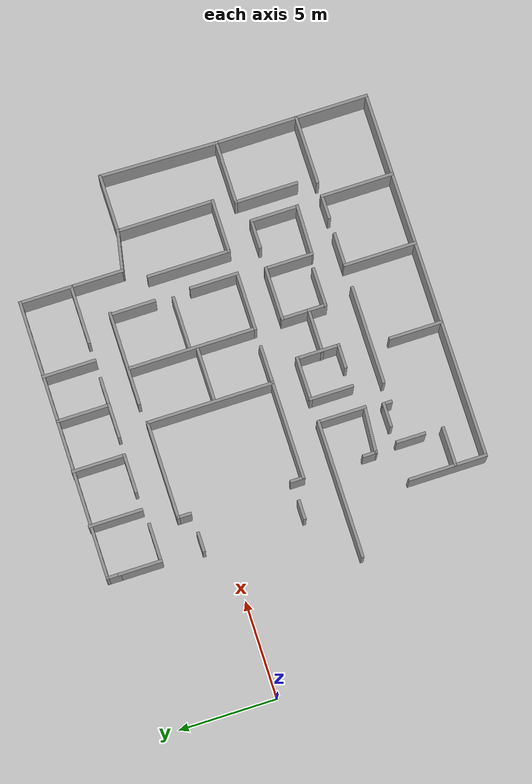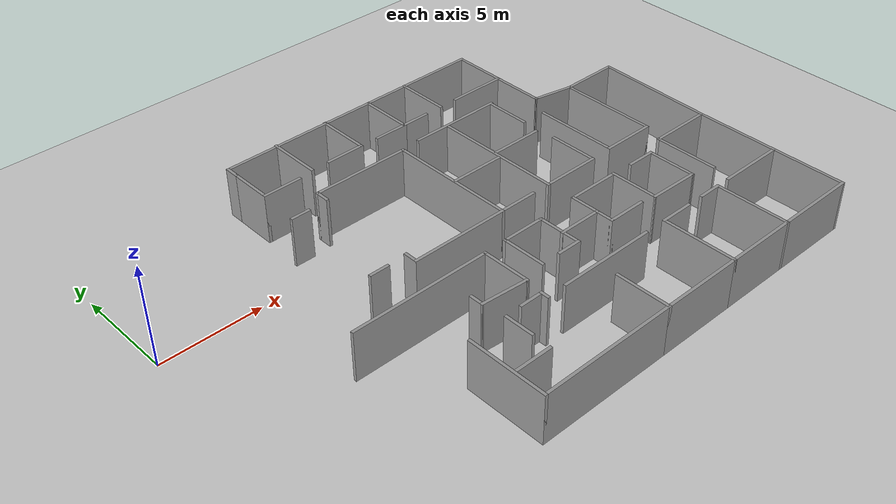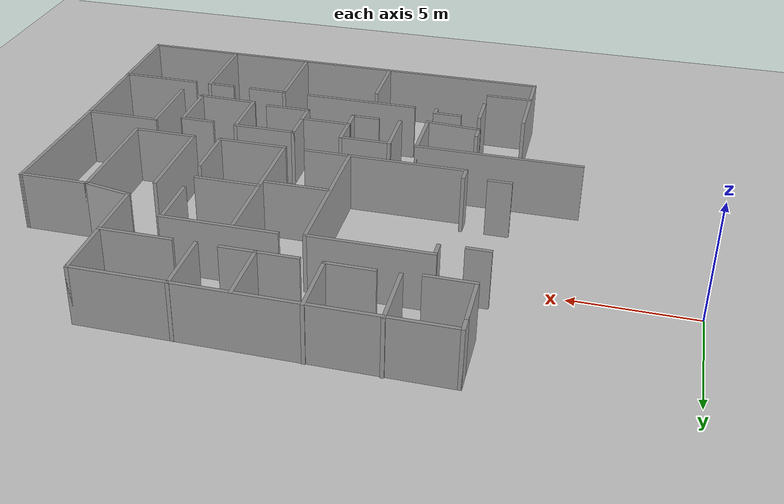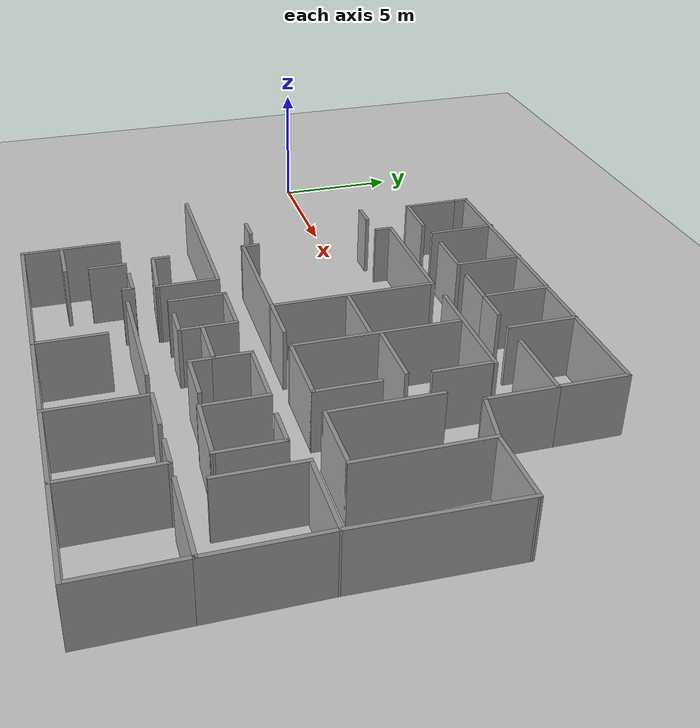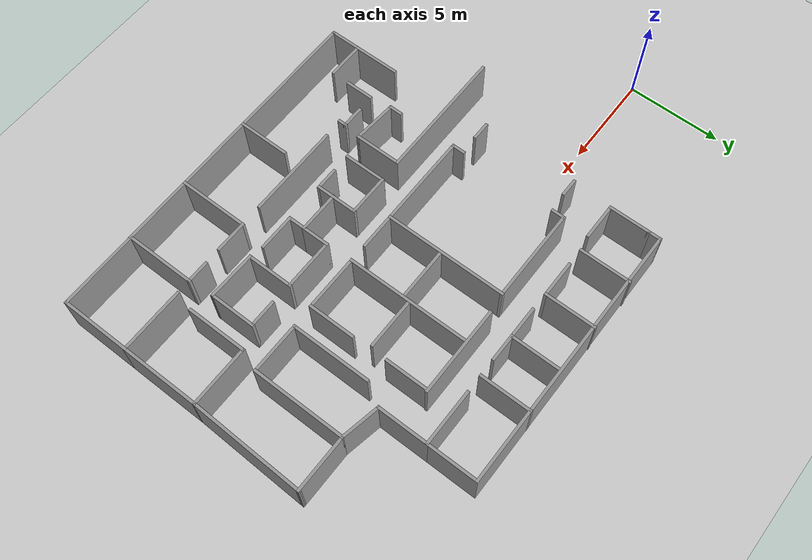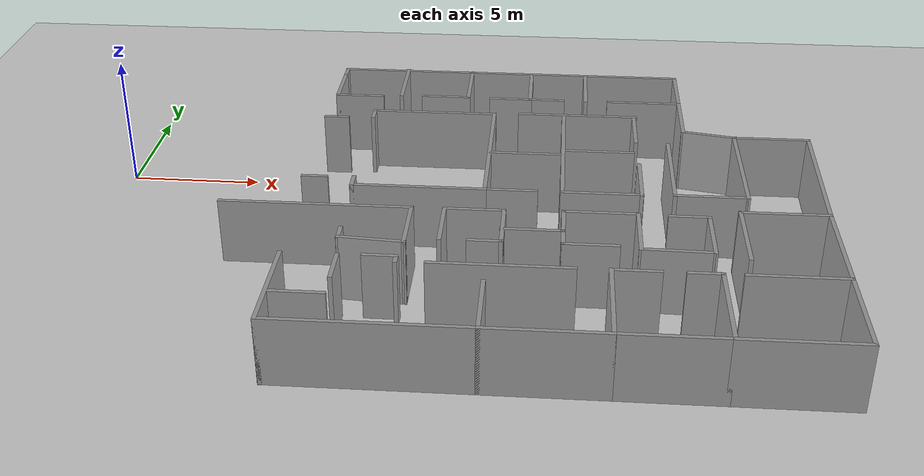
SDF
<sdf version="1.6">
 <world name="default">
  <model name="ground_plane">
   <static>1</static>
   <link name="link">
    <collision name="collision">
     <geometry><plane><normal>0 0 1</normal><size>100 100</size></plane></geometry>
     <surface>
      <contact><collide_bitmask>65535</collide_bitmask></contact>
      <friction><ode><mu>100</mu><mu2>50</mu2></ode></friction>
     </surface>
    </collision>
    <visual name="visual">
     <cast_shadows>0</cast_shadows>
     <geometry><plane><normal>0 0 1</normal><size>100 100</size></plane></geometry>
     <material>
      <script><uri>file://media/materials/scripts/gazebo.material</uri><name>Gazebo/Grey</name></script>
     </material>
    </visual>
   </link>
  </model>
  <model name="large_version">
   <pose>-3.01766 -0.701661 0 0 -0 0</pose>
   <link name="Wall_229">
    <collision name="Wall_229_Collision">
     <geometry><box><size>0.75 0.15 2.5</size></box></geometry>
     <pose>0 0 1.25 0 -0 0</pose>
    </collision>
    <visual name="Wall_229_Visual">
     <pose>0 0 1.25 0 -0 0</pose>
     <geometry><box><size>0.75 0.15 2.5</size></box></geometry>
     <material>
      <script><uri>file://media/materials/scripts/gazebo.material</uri><name>Gazebo/Grey</name></script>
      <ambient>1 1 1 1</ambient>
     </material>
     <meta><layer>0</layer></meta>
    </visual>
    <pose>10.8869 6.4501 0 0 -0 1.5708</pose>
   </link>
   <link name="Wall_230">
    <collision name="Wall_230_Collision">
     <geometry><box><size>14.25 0.15 2.5</size></box></geometry>
     <pose>0 0 1.25 0 -0 0</pose>
    </collision>
    <visual name="Wall_230_Visual">
     <pose>0 0 1.25 0 -0 0</pose>
     <geometry><box><size>14.25 0.15 2.5</size></box></geometry>
     <material>
      <script><uri>file://media/materials/scripts/gazebo.material</uri><name>Gazebo/Grey</name></script>
      <ambient>1 1 1 1</ambient>
     </material>
     <meta><layer>0</layer></meta>
    </visual>
    <pose>17.9369 6.7501 0 0 -0 0</pose>
   </link>
   <link name="Wall_231">
    <collision name="Wall_231_Collision">
     <geometry><box><size>2.75 0.15 2.5</size></box></geometry>
     <pose>0 0 1.25 0 -0 0</pose>
    </collision>
    <visual name="Wall_231_Visual">
     <pose>0 0 1.25 0 -0 0</pose>
     <geometry><box><size>2.75 0.15 2.5</size></box></geometry>
     <material>
      <script><uri>file://media/materials/scripts/gazebo.material</uri><name>Gazebo/Grey</name></script>
      <ambient>1 1 1 1</ambient>
     </material>
     <meta><layer>0</layer></meta>
    </visual>
    <pose>24.9869 5.4501 0 0 -0 -1.5708</pose>
   </link>
   <link name="Wall_232">
    <collision name="Wall_232_Collision">
     <geometry><box><size>3 0.15 2.5</size></box></geometry>
     <pose>0 0 1.25 0 -0 0</pose>
    </collision>
    <visual name="Wall_232_Visual">
     <pose>0 0 1.25 0 -0 0</pose>
     <geometry><box><size>3 0.15 2.5</size></box></geometry>
     <material>
      <script><uri>file://media/materials/scripts/gazebo.material</uri><name>Gazebo/Grey</name></script>
      <ambient>1 1 1 1</ambient>
     </material>
     <meta><layer>0</layer></meta>
    </visual>
    <pose>23.5619 4.1501 0 0 -0 3.14159</pose>
   </link>
   <link name="Wall_234">
    <collision name="Wall_234_Collision">
     <geometry><box><size>2.75 0.15 2.5</size></box></geometry>
     <pose>0 0 1.25 0 -0 0</pose>
    </collision>
    <visual name="Wall_234_Visual">
     <pose>0 0 1.25 0 -0 0</pose>
     <geometry><box><size>2.75 0.15 2.5</size></box></geometry>
     <material>
      <script><uri>file://media/materials/scripts/gazebo.material</uri><name>Gazebo/Grey</name></script>
      <ambient>1 1 1 1</ambient>
     </material>
     <meta><layer>0</layer></meta>
    </visual>
    <pose>21.182 5.45872 0 0 -0 -1.5708</pose>
   </link>
   <link name="Wall_236">
    <collision name="Wall_236_Collision">
     <geometry><box><size>2.75 0.15 2.5</size></box></geometry>
     <pose>0 0 1.25 0 -0 0</pose>
    </collision>
    <visual name="Wall_236_Visual">
     <pose>0 0 1.25 0 -0 0</pose>
     <geometry><box><size>2.75 0.15 2.5</size></box></geometry>
     <material>
      <script><uri>file://media/materials/scripts/gazebo.material</uri><name>Gazebo/Grey</name></script>
      <ambient>1 1 1 1</ambient>
     </material>
     <meta><layer>0</layer></meta>
    </visual>
    <pose>18.8863 5.44713 0 0 -0 -1.5708</pose>
   </link>
   <link name="Wall_238">
    <collision name="Wall_238_Collision">
     <geometry><box><size>2.75 0.15 2.5</size></box></geometry>
     <pose>0 0 1.25 0 -0 0</pose>
    </collision>
    <visual name="Wall_238_Visual">
     <pose>0 0 1.25 0 -0 0</pose>
     <geometry><box><size>2.75 0.15 2.5</size></box></geometry>
     <material>
      <script><uri>file://media/materials/scripts/gazebo.material</uri><name>Gazebo/Grey</name></script>
      <ambient>1 1 1 1</ambient>
     </material>
     <meta><layer>0</layer></meta>
    </visual>
    <pose>16.324 5.48191 0 0 -0 -1.5708</pose>
   </link>
   <link name="Wall_240">
    <collision name="Wall_240_Collision">
     <geometry><box><size>2.75 0.15 2.5</size></box></geometry>
     <pose>0 0 1.25 0 -0 0</pose>
    </collision>
    <visual name="Wall_240_Visual">
     <pose>0 0 1.25 0 -0 0</pose>
     <geometry><box><size>2.75 0.15 2.5</size></box></geometry>
     <material>
      <script><uri>file://media/materials/scripts/gazebo.material</uri><name>Gazebo/Grey</name></script>
      <ambient>1 1 1 1</ambient>
     </material>
     <meta><layer>0</layer></meta>
    </visual>
    <pose>13.5414 5.5051 0 0 -0 -1.5708</pose>
   </link>
   <link name="Wall_242">
    <collision name="Wall_242_Collision">
     <geometry><box><size>2.25 0.15 2.5</size></box></geometry>
     <pose>0 0 1.25 0 -0 0</pose>
    </collision>
    <visual name="Wall_242_Visual">
     <pose>0 0 1.25 0 -0 0</pose>
     <geometry><box><size>2.25 0.15 2.5</size></box></geometry>
     <material>
      <script><uri>file://media/materials/scripts/gazebo.material</uri><name>Gazebo/Grey</name></script>
      <ambient>1 1 1 1</ambient>
     </material>
     <meta><layer>0</layer></meta>
    </visual>
    <pose>10.8869 5.1001 0 0 -0 -1.5708</pose>
   </link>
   <link name="Wall_243">
    <collision name="Wall_243_Collision">
     <geometry><box><size>2 0.15 2.5</size></box></geometry>
     <pose>0 0 1.25 0 -0 0</pose>
    </collision>
    <visual name="Wall_243_Visual">
     <pose>0 0 1.25 0 -0 0</pose>
     <geometry><box><size>2 0.15 2.5</size></box></geometry>
     <material>
      <script><uri>file://media/materials/scripts/gazebo.material</uri><name>Gazebo/Grey</name></script>
      <ambient>1 1 1 1</ambient>
     </material>
     <meta><layer>0</layer></meta>
    </visual>
    <pose>11.8119 4.0501 0 0 -0 0</pose>
   </link>
   <link name="Wall_245">
    <collision name="Wall_245_Collision">
     <geometry><box><size>2 0.15 2.5</size></box></geometry>
     <pose>0 0 1.25 0 -0 0</pose>
    </collision>
    <visual name="Wall_245_Visual">
     <pose>0 0 1.25 0 -0 0</pose>
     <geometry><box><size>2 0.15 2.5</size></box></geometry>
     <material>
      <script><uri>file://media/materials/scripts/gazebo.material</uri><name>Gazebo/Grey</name></script>
      <ambient>1 1 1 1</ambient>
     </material>
     <meta><layer>0</layer></meta>
    </visual>
    <pose>15.399 4.18191 0 0 -0 3.14159</pose>
   </link>
   <link name="Wall_247">
    <collision name="Wall_247_Collision">
     <geometry><box><size>1.75 0.15 2.5</size></box></geometry>
     <pose>0 0 1.25 0 -0 0</pose>
    </collision>
    <visual name="Wall_247_Visual">
     <pose>0 0 1.25 0 -0 0</pose>
     <geometry><box><size>1.75 0.15 2.5</size></box></geometry>
     <material>
      <script><uri>file://media/materials/scripts/gazebo.material</uri><name>Gazebo/Grey</name></script>
      <ambient>1 1 1 1</ambient>
     </material>
     <meta><layer>0</layer></meta>
    </visual>
    <pose>18.0863 4.14713 0 0 -0 3.14159</pose>
   </link>
   <link name="Wall_249">
    <collision name="Wall_249_Collision">
     <geometry><box><size>1.5 0.15 2.5</size></box></geometry>
     <pose>0 0 1.25 0 -0 0</pose>
    </collision>
    <visual name="Wall_249_Visual">
     <pose>0 0 1.25 0 -0 0</pose>
     <geometry><box><size>1.5 0.15 2.5</size></box></geometry>
     <material>
      <script><uri>file://media/materials/scripts/gazebo.material</uri><name>Gazebo/Grey</name></script>
      <ambient>1 1 1 1</ambient>
     </material>
     <meta><layer>0</layer></meta>
    </visual>
    <pose>19.5613 4.14713 0 0 -0 0</pose>
   </link>
   <link name="Wall_261">
    <collision name="Wall_261_Collision">
     <geometry><box><size>1 0.15 2.5</size></box></geometry>
     <pose>0 0 1.25 0 -0 0</pose>
    </collision>
    <visual name="Wall_261_Visual">
     <pose>0 0 1.25 0 -0 0</pose>
     <geometry><box><size>1 0.15 2.5</size></box></geometry>
     <material>
      <script><uri>file://media/materials/scripts/gazebo.material</uri><name>Gazebo/Grey</name></script>
      <ambient>1 1 1 1</ambient>
     </material>
     <meta><layer>0</layer></meta>
    </visual>
    <pose>11.183 1.93251 0 0 -0 0</pose>
   </link>
   <link name="Wall_263">
    <collision name="Wall_263_Collision">
     <geometry><box><size>1 0.15 2.5</size></box></geometry>
     <pose>0 0 1.25 0 -0 0</pose>
    </collision>
    <visual name="Wall_263_Visual">
     <pose>0 0 1.25 0 -0 0</pose>
     <geometry><box><size>1 0.15 2.5</size></box></geometry>
     <material>
      <script><uri>file://media/materials/scripts/gazebo.material</uri><name>Gazebo/Grey</name></script>
      <ambient>1 1 1 1</ambient>
     </material>
     <meta><layer>0</layer></meta>
    </visual>
    <pose>11.183 -3.16749 0 0 -0 0</pose>
   </link>
   <link name="Wall_265">
    <collision name="Wall_265_Collision">
     <geometry><box><size>0.75 0.15 2.5</size></box></geometry>
     <pose>0 0 1.25 0 -0 0</pose>
    </collision>
    <visual name="Wall_265_Visual">
     <pose>0 0 1.25 0 -0 0</pose>
     <geometry><box><size>0.75 0.15 2.5</size></box></geometry>
     <material>
      <script><uri>file://media/materials/scripts/gazebo.material</uri><name>Gazebo/Grey</name></script>
      <ambient>1 1 1 1</ambient>
     </material>
     <meta><layer>0</layer></meta>
    </visual>
    <pose>12.644 -3.42149 0 0 -0 -1.5708</pose>
   </link>
   <link name="Wall_267">
    <collision name="Wall_267_Collision">
     <geometry><box><size>5 0.15 2.5</size></box></geometry>
     <pose>0 0 1.25 0 -0 0</pose>
    </collision>
    <visual name="Wall_267_Visual">
     <pose>0 0 1.25 0 -0 0</pose>
     <geometry><box><size>5 0.15 2.5</size></box></geometry>
     <material>
      <script><uri>file://media/materials/scripts/gazebo.material</uri><name>Gazebo/Grey</name></script>
      <ambient>1 1 1 1</ambient>
     </material>
     <meta><layer>0</layer></meta>
    </visual>
    <pose>15.069 -3.72149 0 0 -0 0</pose>
   </link>
   <link name="Wall_268">
    <collision name="Wall_268_Collision">
     <geometry><box><size>6.5 0.15 2.5</size></box></geometry>
     <pose>0 0 1.25 0 -0 0</pose>
    </collision>
    <visual name="Wall_268_Visual">
     <pose>0 0 1.25 0 -0 0</pose>
     <geometry><box><size>6.5 0.15 2.5</size></box></geometry>
     <material>
      <script><uri>file://media/materials/scripts/gazebo.material</uri><name>Gazebo/Grey</name></script>
      <ambient>1 1 1 1</ambient>
     </material>
     <meta><layer>0</layer></meta>
    </visual>
    <pose>17.494 -0.546491 0 0 -0 1.5708</pose>
   </link>
   <link name="Wall_269">
    <collision name="Wall_269_Collision">
     <geometry><box><size>5 0.15 2.5</size></box></geometry>
     <pose>0 0 1.25 0 -0 0</pose>
    </collision>
    <visual name="Wall_269_Visual">
     <pose>0 0 1.25 0 -0 0</pose>
     <geometry><box><size>5 0.15 2.5</size></box></geometry>
     <material>
      <script><uri>file://media/materials/scripts/gazebo.material</uri><name>Gazebo/Grey</name></script>
      <ambient>1 1 1 1</ambient>
     </material>
     <meta><layer>0</layer></meta>
    </visual>
    <pose>15.069 2.62851 0 0 -0 3.14159</pose>
   </link>
   <link name="Wall_270">
    <collision name="Wall_270_Collision">
     <geometry><box><size>0.75 0.15 2.5</size></box></geometry>
     <pose>0 0 1.25 0 -0 0</pose>
    </collision>
    <visual name="Wall_270_Visual">
     <pose>0 0 1.25 0 -0 0</pose>
     <geometry><box><size>0.75 0.15 2.5</size></box></geometry>
     <material>
      <script><uri>file://media/materials/scripts/gazebo.material</uri><name>Gazebo/Grey</name></script>
      <ambient>1 1 1 1</ambient>
     </material>
     <meta><layer>0</layer></meta>
    </visual>
    <pose>12.644 2.32851 0 0 -0 -1.5708</pose>
   </link>
   <link name="Wall_282">
    <collision name="Wall_282_Collision">
     <geometry><box><size>7 0.15 2.5</size></box></geometry>
     <pose>0 0 1.25 0 -0 0</pose>
    </collision>
    <visual name="Wall_282_Visual">
     <pose>0 0 1.25 0 -0 0</pose>
     <geometry><box><size>7 0.15 2.5</size></box></geometry>
     <material>
      <script><uri>file://media/materials/scripts/gazebo.material</uri><name>Gazebo/Grey</name></script>
      <ambient>1 1 1 1</ambient>
     </material>
     <meta><layer>0</layer></meta>
    </visual>
    <pose>11.5771 -5.25493 0 0 -0 0</pose>
   </link>
   <link name="Wall_283">
    <collision name="Wall_283_Collision">
     <geometry><box><size>2.5 0.15 2.5</size></box></geometry>
     <pose>0 0 1.25 0 -0 0</pose>
    </collision>
    <visual name="Wall_283_Visual">
     <pose>0 0 1.25 0 -0 0</pose>
     <geometry><box><size>2.5 0.15 2.5</size></box></geometry>
     <material>
      <script><uri>file://media/materials/scripts/gazebo.material</uri><name>Gazebo/Grey</name></script>
      <ambient>1 1 1 1</ambient>
     </material>
     <meta><layer>0</layer></meta>
    </visual>
    <pose>15.0021 -6.42993 0 0 -0 -1.5708</pose>
   </link>
   <link name="Wall_285">
    <collision name="Wall_285_Collision">
     <geometry><box><size>0.75 0.15 2.5</size></box></geometry>
     <pose>0 0 1.25 0 -0 0</pose>
    </collision>
    <visual name="Wall_285_Visual">
     <pose>0 0 1.25 0 -0 0</pose>
     <geometry><box><size>0.75 0.15 2.5</size></box></geometry>
     <material>
      <script><uri>file://media/materials/scripts/gazebo.material</uri><name>Gazebo/Grey</name></script>
      <ambient>1 1 1 1</ambient>
     </material>
     <meta><layer>0</layer></meta>
    </visual>
    <pose>12.7434 -7.13174 0 0 -0 -1.5708</pose>
   </link>
   <link name="Wall_286">
    <collision name="Wall_286_Collision">
     <geometry><box><size>2.41533 0.15 2.5</size></box></geometry>
     <pose>0 0 1.25 0 -0 0</pose>
    </collision>
    <visual name="Wall_286_Visual">
     <pose>0 0 1.25 0 -0 0</pose>
     <geometry><box><size>2.41533 0.15 2.5</size></box></geometry>
     <material>
      <script><uri>file://media/materials/scripts/gazebo.material</uri><name>Gazebo/Grey</name></script>
      <ambient>1 1 1 1</ambient>
     </material>
     <meta><layer>0</layer></meta>
    </visual>
    <pose>13.8727 -7.51834 0 0 -0 -0.076527</pose>
   </link>
   <link name="Wall_290">
    <collision name="Wall_290_Collision">
     <geometry><box><size>4 0.15 2.5</size></box></geometry>
     <pose>0 0 1.25 0 -0 0</pose>
    </collision>
    <visual name="Wall_290_Visual">
     <pose>0 0 1.25 0 -0 0</pose>
     <geometry><box><size>4 0.15 2.5</size></box></geometry>
     <material>
      <script><uri>file://media/materials/scripts/gazebo.material</uri><name>Gazebo/Grey</name></script>
      <ambient>1 1 1 1</ambient>
     </material>
     <meta><layer>0</layer></meta>
    </visual>
    <pose>10.9817 -10.5217 0 0 -0 -1.5708</pose>
   </link>
   <link name="Wall_291">
    <collision name="Wall_291_Collision">
     <geometry><box><size>7 0.15 2.5</size></box></geometry>
     <pose>0 0 1.25 0 -0 0</pose>
    </collision>
    <visual name="Wall_291_Visual">
     <pose>0 0 1.25 0 -0 0</pose>
     <geometry><box><size>7 0.15 2.5</size></box></geometry>
     <material>
      <script><uri>file://media/materials/scripts/gazebo.material</uri><name>Gazebo/Grey</name></script>
      <ambient>1 1 1 1</ambient>
     </material>
     <meta><layer>0</layer></meta>
    </visual>
    <pose>14.4067 -12.4467 0 0 -0 0</pose>
   </link>
   <link name="Wall_292">
    <collision name="Wall_292_Collision">
     <geometry><box><size>2.75 0.15 2.5</size></box></geometry>
     <pose>0 0 1.25 0 -0 0</pose>
    </collision>
    <visual name="Wall_292_Visual">
     <pose>0 0 1.25 0 -0 0</pose>
     <geometry><box><size>2.75 0.15 2.5</size></box></geometry>
     <material>
      <script><uri>file://media/materials/scripts/gazebo.material</uri><name>Gazebo/Grey</name></script>
      <ambient>1 1 1 1</ambient>
     </material>
     <meta><layer>0</layer></meta>
    </visual>
    <pose>17.8317 -11.1467 0 0 -0 1.5708</pose>
   </link>
   <link name="Wall_294">
    <collision name="Wall_294_Collision">
     <geometry><box><size>2 0.15 2.5</size></box></geometry>
     <pose>0 0 1.25 0 -0 0</pose>
    </collision>
    <visual name="Wall_294_Visual">
     <pose>0 0 1.25 0 -0 0</pose>
     <geometry><box><size>2 0.15 2.5</size></box></geometry>
     <material>
      <script><uri>file://media/materials/scripts/gazebo.material</uri><name>Gazebo/Grey</name></script>
      <ambient>1 1 1 1</ambient>
     </material>
     <meta><layer>0</layer></meta>
    </visual>
    <pose>11.9333 -10.9034 0 0 -0 0</pose>
   </link>
   <link name="Wall_296">
    <collision name="Wall_296_Collision">
     <geometry><box><size>1.5 0.15 2.5</size></box></geometry>
     <pose>0 0 1.25 0 -0 0</pose>
    </collision>
    <visual name="Wall_296_Visual">
     <pose>0 0 1.25 0 -0 0</pose>
     <geometry><box><size>1.5 0.15 2.5</size></box></geometry>
     <material>
      <script><uri>file://media/materials/scripts/gazebo.material</uri><name>Gazebo/Grey</name></script>
      <ambient>1 1 1 1</ambient>
     </material>
     <meta><layer>0</layer></meta>
    </visual>
    <pose>12.9012 -9.26201 0 0 -0 -1.5708</pose>
   </link>
   <link name="Wall_298">
    <collision name="Wall_298_Collision">
     <geometry><box><size>1.25 0.15 2.5</size></box></geometry>
     <pose>0 0 1.25 0 -0 0</pose>
    </collision>
    <visual name="Wall_298_Visual">
     <pose>0 0 1.25 0 -0 0</pose>
     <geometry><box><size>1.25 0.15 2.5</size></box></geometry>
     <material>
      <script><uri>file://media/materials/scripts/gazebo.material</uri><name>Gazebo/Grey</name></script>
      <ambient>1 1 1 1</ambient>
     </material>
     <meta><layer>0</layer></meta>
    </visual>
    <pose>14.3183 -8.53006 0 0 -0 0</pose>
   </link>
   <link name="Wall_300">
    <collision name="Wall_300_Collision">
     <geometry><box><size>0.5 0.15 2.5</size></box></geometry>
     <pose>0 0 1.25 0 -0 0</pose>
    </collision>
    <visual name="Wall_300_Visual">
     <pose>0 0 1.25 0 -0 0</pose>
     <geometry><box><size>0.5 0.15 2.5</size></box></geometry>
     <material>
      <script><uri>file://media/materials/scripts/gazebo.material</uri><name>Gazebo/Grey</name></script>
      <ambient>1 1 1 1</ambient>
     </material>
     <meta><layer>0</layer></meta>
    </visual>
    <pose>14.8683 -8.70506 0 0 -0 -1.5708</pose>
   </link>
   <link name="Wall_302">
    <collision name="Wall_302_Collision">
     <geometry><box><size>5 0.15 2.5</size></box></geometry>
     <pose>0 0 1.25 0 -0 0</pose>
    </collision>
    <visual name="Wall_302_Visual">
     <pose>0 0 1.25 0 -0 0</pose>
     <geometry><box><size>5 0.15 2.5</size></box></geometry>
     <material>
      <script><uri>file://media/materials/scripts/gazebo.material</uri><name>Gazebo/Grey</name></script>
      <ambient>1 1 1 1</ambient>
     </material>
     <meta><layer>0</layer></meta>
    </visual>
    <pose>18.3267 -8.85006 0 0 -0 0</pose>
   </link>
   <link name="Wall_304">
    <collision name="Wall_304_Collision">
     <geometry><box><size>4.25 0.15 2.5</size></box></geometry>
     <pose>0 0 1.25 0 -0 0</pose>
    </collision>
    <visual name="Wall_304_Visual">
     <pose>0 0 1.25 0 -0 0</pose>
     <geometry><box><size>4.25 0.15 2.5</size></box></geometry>
     <material>
      <script><uri>file://media/materials/scripts/gazebo.material</uri><name>Gazebo/Grey</name></script>
      <ambient>1 1 1 1</ambient>
     </material>
     <meta><layer>0</layer></meta>
    </visual>
    <pose>19.8817 -12.4467 0 0 -0 0</pose>
   </link>
   <link name="Wall_305">
    <collision name="Wall_305_Collision">
     <geometry><box><size>3.75 0.15 2.5</size></box></geometry>
     <pose>0 0 1.25 0 -0 0</pose>
    </collision>
    <visual name="Wall_305_Visual">
     <pose>0 0 1.25 0 -0 0</pose>
     <geometry><box><size>3.75 0.15 2.5</size></box></geometry>
     <material>
      <script><uri>file://media/materials/scripts/gazebo.material</uri><name>Gazebo/Grey</name></script>
      <ambient>1 1 1 1</ambient>
     </material>
     <meta><layer>0</layer></meta>
    </visual>
    <pose>21.9317 -10.6467 0 0 -0 1.5708</pose>
   </link>
   <link name="Wall_306">
    <collision name="Wall_306_Collision">
     <geometry><box><size>1.75 0.15 2.5</size></box></geometry>
     <pose>0 0 1.25 0 -0 0</pose>
    </collision>
    <visual name="Wall_306_Visual">
     <pose>0 0 1.25 0 -0 0</pose>
     <geometry><box><size>1.75 0.15 2.5</size></box></geometry>
     <material>
      <script><uri>file://media/materials/scripts/gazebo.material</uri><name>Gazebo/Grey</name></script>
      <ambient>1 1 1 1</ambient>
     </material>
     <meta><layer>0</layer></meta>
    </visual>
    <pose>22.7317 -8.84673 0 0 -0 0</pose>
   </link>
   <link name="Wall_308">
    <collision name="Wall_308_Collision">
     <geometry><box><size>3.75 0.15 2.5</size></box></geometry>
     <pose>0 0 1.25 0 -0 0</pose>
    </collision>
    <visual name="Wall_308_Visual">
     <pose>0 0 1.25 0 -0 0</pose>
     <geometry><box><size>3.75 0.15 2.5</size></box></geometry>
     <material>
      <script><uri>file://media/materials/scripts/gazebo.material</uri><name>Gazebo/Grey</name></script>
      <ambient>1 1 1 1</ambient>
     </material>
     <meta><layer>0</layer></meta>
    </visual>
    <pose>23.7317 -12.4467 0 0 -0 0</pose>
   </link>
   <link name="Wall_309">
    <collision name="Wall_309_Collision">
     <geometry><box><size>3.75 0.15 2.5</size></box></geometry>
     <pose>0 0 1.25 0 -0 0</pose>
    </collision>
    <visual name="Wall_309_Visual">
     <pose>0 0 1.25 0 -0 0</pose>
     <geometry><box><size>3.75 0.15 2.5</size></box></geometry>
     <material>
      <script><uri>file://media/materials/scripts/gazebo.material</uri><name>Gazebo/Grey</name></script>
      <ambient>1 1 1 1</ambient>
     </material>
     <meta><layer>0</layer></meta>
    </visual>
    <pose>25.5317 -10.6467 0 0 -0 1.5708</pose>
   </link>
   <link name="Wall_310">
    <collision name="Wall_310_Collision">
     <geometry><box><size>1.25 0.15 2.5</size></box></geometry>
     <pose>0 0 1.25 0 -0 0</pose>
    </collision>
    <visual name="Wall_310_Visual">
     <pose>0 0 1.25 0 -0 0</pose>
     <geometry><box><size>1.25 0.15 2.5</size></box></geometry>
     <material>
      <script><uri>file://media/materials/scripts/gazebo.material</uri><name>Gazebo/Grey</name></script>
      <ambient>1 1 1 1</ambient>
     </material>
     <meta><layer>0</layer></meta>
    </visual>
    <pose>24.9817 -8.84673 0 0 -0 3.14159</pose>
   </link>
   <link name="Wall_312">
    <collision name="Wall_312_Collision">
     <geometry><box><size>4.25 0.15 2.5</size></box></geometry>
     <pose>0 0 1.25 0 -0 0</pose>
    </collision>
    <visual name="Wall_312_Visual">
     <pose>0 0 1.25 0 -0 0</pose>
     <geometry><box><size>4.25 0.15 2.5</size></box></geometry>
     <material>
      <script><uri>file://media/materials/scripts/gazebo.material</uri><name>Gazebo/Grey</name></script>
      <ambient>1 1 1 1</ambient>
     </material>
     <meta><layer>0</layer></meta>
    </visual>
    <pose>27.5817 -12.4467 0 0 -0 0</pose>
   </link>
   <link name="Wall_313">
    <collision name="Wall_313_Collision">
     <geometry><box><size>3.75 0.15 2.5</size></box></geometry>
     <pose>0 0 1.25 0 -0 0</pose>
    </collision>
    <visual name="Wall_313_Visual">
     <pose>0 0 1.25 0 -0 0</pose>
     <geometry><box><size>3.75 0.15 2.5</size></box></geometry>
     <material>
      <script><uri>file://media/materials/scripts/gazebo.material</uri><name>Gazebo/Grey</name></script>
      <ambient>1 1 1 1</ambient>
     </material>
     <meta><layer>0</layer></meta>
    </visual>
    <pose>29.6317 -10.6467 0 0 -0 1.5708</pose>
   </link>
   <link name="Wall_314">
    <collision name="Wall_314_Collision">
     <geometry><box><size>3.5 0.15 2.5</size></box></geometry>
     <pose>0 0 1.25 0 -0 0</pose>
    </collision>
    <visual name="Wall_314_Visual">
     <pose>0 0 1.25 0 -0 0</pose>
     <geometry><box><size>3.5 0.15 2.5</size></box></geometry>
     <material>
      <script><uri>file://media/materials/scripts/gazebo.material</uri><name>Gazebo/Grey</name></script>
      <ambient>1 1 1 1</ambient>
     </material>
     <meta><layer>0</layer></meta>
    </visual>
    <pose>27.9567 -8.84673 0 0 -0 3.14159</pose>
   </link>
   <link name="Wall_316">
    <collision name="Wall_316_Collision">
     <geometry><box><size>4.25 0.15 2.5</size></box></geometry>
     <pose>0 0 1.25 0 -0 0</pose>
    </collision>
    <visual name="Wall_316_Visual">
     <pose>0 0 1.25 0 -0 0</pose>
     <geometry><box><size>4.25 0.15 2.5</size></box></geometry>
     <material>
      <script><uri>file://media/materials/scripts/gazebo.material</uri><name>Gazebo/Grey</name></script>
      <ambient>1 1 1 1</ambient>
     </material>
     <meta><layer>0</layer></meta>
    </visual>
    <pose>29.6317 -6.79673 0 0 -0 1.5708</pose>
   </link>
   <link name="Wall_317">
    <collision name="Wall_317_Collision">
     <geometry><box><size>3.25 0.15 2.5</size></box></geometry>
     <pose>0 0 1.25 0 -0 0</pose>
    </collision>
    <visual name="Wall_317_Visual">
     <pose>0 0 1.25 0 -0 0</pose>
     <geometry><box><size>3.25 0.15 2.5</size></box></geometry>
     <material>
      <script><uri>file://media/materials/scripts/gazebo.material</uri><name>Gazebo/Grey</name></script>
      <ambient>1 1 1 1</ambient>
     </material>
     <meta><layer>0</layer></meta>
    </visual>
    <pose>28.0817 -4.74673 0 0 -0 3.14159</pose>
   </link>
   <link name="Wall_318">
    <collision name="Wall_318_Collision">
     <geometry><box><size>3.25 0.15 2.5</size></box></geometry>
     <pose>0 0 1.25 0 -0 0</pose>
    </collision>
    <visual name="Wall_318_Visual">
     <pose>0 0 1.25 0 -0 0</pose>
     <geometry><box><size>3.25 0.15 2.5</size></box></geometry>
     <material>
      <script><uri>file://media/materials/scripts/gazebo.material</uri><name>Gazebo/Grey</name></script>
      <ambient>1 1 1 1</ambient>
     </material>
     <meta><layer>0</layer></meta>
    </visual>
    <pose>26.5317 -6.29673 0 0 -0 -1.5708</pose>
   </link>
   <link name="Wall_320">
    <collision name="Wall_320_Collision">
     <geometry><box><size>2.25 0.15 2.5</size></box></geometry>
     <pose>0 0 1.25 0 -0 0</pose>
    </collision>
    <visual name="Wall_320_Visual">
     <pose>0 0 1.25 0 -0 0</pose>
     <geometry><box><size>2.25 0.15 2.5</size></box></geometry>
     <material>
      <script><uri>file://media/materials/scripts/gazebo.material</uri><name>Gazebo/Grey</name></script>
      <ambient>1 1 1 1</ambient>
     </material>
     <meta><layer>0</layer></meta>
    </visual>
    <pose>16.1744 -6.28003 0 0 -0 -1.5708</pose>
   </link>
   <link name="Wall_322">
    <collision name="Wall_322_Collision">
     <geometry><box><size>2.25 0.15 2.5</size></box></geometry>
     <pose>0 0 1.25 0 -0 0</pose>
    </collision>
    <visual name="Wall_322_Visual">
     <pose>0 0 1.25 0 -0 0</pose>
     <geometry><box><size>2.25 0.15 2.5</size></box></geometry>
     <material>
      <script><uri>file://media/materials/scripts/gazebo.material</uri><name>Gazebo/Grey</name></script>
      <ambient>1 1 1 1</ambient>
     </material>
     <meta><layer>0</layer></meta>
    </visual>
    <pose>17.2244 -5.23003 0 0 -0 0</pose>
   </link>
   <link name="Wall_324">
    <collision name="Wall_324_Collision">
     <geometry><box><size>2.25 0.15 2.5</size></box></geometry>
     <pose>0 0 1.25 0 -0 0</pose>
    </collision>
    <visual name="Wall_324_Visual">
     <pose>0 0 1.25 0 -0 0</pose>
     <geometry><box><size>2.25 0.15 2.5</size></box></geometry>
     <material>
      <script><uri>file://media/materials/scripts/gazebo.material</uri><name>Gazebo/Grey</name></script>
      <ambient>1 1 1 1</ambient>
     </material>
     <meta><layer>0</layer></meta>
    </visual>
    <pose>18.2744 -6.28003 0 0 -0 -1.5708</pose>
   </link>
   <link name="Wall_325">
    <collision name="Wall_325_Collision">
     <geometry><box><size>1.25 0.15 2.5</size></box></geometry>
     <pose>0 0 1.25 0 -0 0</pose>
    </collision>
    <visual name="Wall_325_Visual">
     <pose>0 0 1.25 0 -0 0</pose>
     <geometry><box><size>1.25 0.15 2.5</size></box></geometry>
     <material>
      <script><uri>file://media/materials/scripts/gazebo.material</uri><name>Gazebo/Grey</name></script>
      <ambient>1 1 1 1</ambient>
     </material>
     <meta><layer>0</layer></meta>
    </visual>
    <pose>17.7244 -7.33003 0 0 -0 3.14159</pose>
   </link>
   <link name="Wall_327">
    <collision name="Wall_327_Collision">
     <geometry><box><size>2.25 0.15 2.5</size></box></geometry>
     <pose>0 0 1.25 0 -0 0</pose>
    </collision>
    <visual name="Wall_327_Visual">
     <pose>0 0 1.25 0 -0 0</pose>
     <geometry><box><size>2.25 0.15 2.5</size></box></geometry>
     <material>
      <script><uri>file://media/materials/scripts/gazebo.material</uri><name>Gazebo/Grey</name></script>
      <ambient>1 1 1 1</ambient>
     </material>
     <meta><layer>0</layer></meta>
    </visual>
    <pose>19.3056 -6.48788 0 0 -0 0</pose>
   </link>
   <link name="Wall_328">
    <collision name="Wall_328_Collision">
     <geometry><box><size>1.5 0.15 2.5</size></box></geometry>
     <pose>0 0 1.25 0 -0 0</pose>
    </collision>
    <visual name="Wall_328_Visual">
     <pose>0 0 1.25 0 -0 0</pose>
     <geometry><box><size>1.5 0.15 2.5</size></box></geometry>
     <material>
      <script><uri>file://media/materials/scripts/gazebo.material</uri><name>Gazebo/Grey</name></script>
      <ambient>1 1 1 1</ambient>
     </material>
     <meta><layer>0</layer></meta>
    </visual>
    <pose>20.3556 -5.81288 0 0 -0 1.5708</pose>
   </link>
   <link name="Wall_330">
    <collision name="Wall_330_Collision">
     <geometry><box><size>2.75 0.15 2.5</size></box></geometry>
     <pose>0 0 1.25 0 -0 0</pose>
    </collision>
    <visual name="Wall_330_Visual">
     <pose>0 0 1.25 0 -0 0</pose>
     <geometry><box><size>2.75 0.15 2.5</size></box></geometry>
     <material>
      <script><uri>file://media/materials/scripts/gazebo.material</uri><name>Gazebo/Grey</name></script>
      <ambient>1 1 1 1</ambient>
     </material>
     <meta><layer>0</layer></meta>
    </visual>
    <pose>21.6556 -5.13788 0 0 -0 0</pose>
   </link>
   <link name="Wall_331">
    <collision name="Wall_331_Collision">
     <geometry><box><size>2.5 0.15 2.5</size></box></geometry>
     <pose>0 0 1.25 0 -0 0</pose>
    </collision>
    <visual name="Wall_331_Visual">
     <pose>0 0 1.25 0 -0 0</pose>
     <geometry><box><size>2.5 0.15 2.5</size></box></geometry>
     <material>
      <script><uri>file://media/materials/scripts/gazebo.material</uri><name>Gazebo/Grey</name></script>
      <ambient>1 1 1 1</ambient>
     </material>
     <meta><layer>0</layer></meta>
    </visual>
    <pose>22.9556 -6.31288 0 0 -0 -1.5708</pose>
   </link>
   <link name="Wall_333">
    <collision name="Wall_333_Collision">
     <geometry><box><size>1 0.15 2.5</size></box></geometry>
     <pose>0 0 1.25 0 -0 0</pose>
    </collision>
    <visual name="Wall_333_Visual">
     <pose>0 0 1.25 0 -0 0</pose>
     <geometry><box><size>1 0.15 2.5</size></box></geometry>
     <material>
      <script><uri>file://media/materials/scripts/gazebo.material</uri><name>Gazebo/Grey</name></script>
      <ambient>1 1 1 1</ambient>
     </material>
     <meta><layer>0</layer></meta>
    </visual>
    <pose>20.3556 -6.91288 0 0 -0 -1.5708</pose>
   </link>
   <link name="Wall_334">
    <collision name="Wall_334_Collision">
     <geometry><box><size>2 0.15 2.5</size></box></geometry>
     <pose>0 0 1.25 0 -0 0</pose>
    </collision>
    <visual name="Wall_334_Visual">
     <pose>0 0 1.25 0 -0 0</pose>
     <geometry><box><size>2 0.15 2.5</size></box></geometry>
     <material>
      <script><uri>file://media/materials/scripts/gazebo.material</uri><name>Gazebo/Grey</name></script>
      <ambient>1 1 1 1</ambient>
     </material>
     <meta><layer>0</layer></meta>
    </visual>
    <pose>21.2806 -7.33788 0 0 -0 0</pose>
   </link>
   <link name="Wall_336">
    <collision name="Wall_336_Collision">
     <geometry><box><size>1.5 0.15 2.5</size></box></geometry>
     <pose>0 0 1.25 0 -0 0</pose>
    </collision>
    <visual name="Wall_336_Visual">
     <pose>0 0 1.25 0 -0 0</pose>
     <geometry><box><size>1.5 0.15 2.5</size></box></geometry>
     <material>
      <script><uri>file://media/materials/scripts/gazebo.material</uri><name>Gazebo/Grey</name></script>
      <ambient>1 1 1 1</ambient>
     </material>
     <meta><layer>0</layer></meta>
    </visual>
    <pose>24.7396 -5.19191 0 0 -0 0</pose>
   </link>
   <link name="Wall_337">
    <collision name="Wall_337_Collision">
     <geometry><box><size>2.5 0.15 2.5</size></box></geometry>
     <pose>0 0 1.25 0 -0 0</pose>
    </collision>
    <visual name="Wall_337_Visual">
     <pose>0 0 1.25 0 -0 0</pose>
     <geometry><box><size>2.5 0.15 2.5</size></box></geometry>
     <material>
      <script><uri>file://media/materials/scripts/gazebo.material</uri><name>Gazebo/Grey</name></script>
      <ambient>1 1 1 1</ambient>
     </material>
     <meta><layer>0</layer></meta>
    </visual>
    <pose>25.4146 -6.36691 0 0 -0 -1.5708</pose>
   </link>
   <link name="Wall_338">
    <collision name="Wall_338_Collision">
     <geometry><box><size>2.60961 0.15 2.5</size></box></geometry>
     <pose>0 0 1.25 0 -0 0</pose>
    </collision>
    <visual name="Wall_338_Visual">
     <pose>0 0 1.25 0 -0 0</pose>
     <geometry><box><size>2.60961 0.15 2.5</size></box></geometry>
     <material>
      <script><uri>file://media/materials/scripts/gazebo.material</uri><name>Gazebo/Grey</name></script>
      <ambient>1 1 1 1</ambient>
     </material>
     <meta><layer>0</layer></meta>
    </visual>
    <pose>24.1851 -7.51489 0 0 -0 3.11963</pose>
   </link>
   <link name="Wall_340">
    <collision name="Wall_340_Collision">
     <geometry><box><size>6.5 0.15 2.5</size></box></geometry>
     <pose>0 0 1.25 0 -0 0</pose>
    </collision>
    <visual name="Wall_340_Visual">
     <pose>0 0 1.25 0 -0 0</pose>
     <geometry><box><size>6.5 0.15 2.5</size></box></geometry>
     <material>
      <script><uri>file://media/materials/scripts/gazebo.material</uri><name>Gazebo/Grey</name></script>
      <ambient>1 1 1 1</ambient>
     </material>
     <meta><layer>0</layer></meta>
    </visual>
    <pose>20.297 -0.557582 0 0 -0 1.5708</pose>
   </link>
   <link name="Wall_342">
    <collision name="Wall_342_Collision">
     <geometry><box><size>2.25 0.15 2.5</size></box></geometry>
     <pose>0 0 1.25 0 -0 0</pose>
    </collision>
    <visual name="Wall_342_Visual">
     <pose>0 0 1.25 0 -0 0</pose>
     <geometry><box><size>2.25 0.15 2.5</size></box></geometry>
     <material>
      <script><uri>file://media/materials/scripts/gazebo.material</uri><name>Gazebo/Grey</name></script>
      <ambient>1 1 1 1</ambient>
     </material>
     <meta><layer>0</layer></meta>
    </visual>
    <pose>23.0989 1.566 0 0 -0 -1.5708</pose>
   </link>
   <link name="Wall_344">
    <collision name="Wall_344_Collision">
     <geometry><box><size>2.75 0.15 2.5</size></box></geometry>
     <pose>0 0 1.25 0 -0 0</pose>
    </collision>
    <visual name="Wall_344_Visual">
     <pose>0 0 1.25 0 -0 0</pose>
     <geometry><box><size>2.75 0.15 2.5</size></box></geometry>
     <material>
      <script><uri>file://media/materials/scripts/gazebo.material</uri><name>Gazebo/Grey</name></script>
      <ambient>1 1 1 1</ambient>
     </material>
     <meta><layer>0</layer></meta>
    </visual>
    <pose>18.8661 -0.771094 0 0 -0 0</pose>
   </link>
   <link name="Wall_346">
    <collision name="Wall_346_Collision">
     <geometry><box><size>2.75 0.15 2.5</size></box></geometry>
     <pose>0 0 1.25 0 -0 0</pose>
    </collision>
    <visual name="Wall_346_Visual">
     <pose>0 0 1.25 0 -0 0</pose>
     <geometry><box><size>2.75 0.15 2.5</size></box></geometry>
     <material>
      <script><uri>file://media/materials/scripts/gazebo.material</uri><name>Gazebo/Grey</name></script>
      <ambient>1 1 1 1</ambient>
     </material>
     <meta><layer>0</layer></meta>
    </visual>
    <pose>21.6325 -0.416424 0 0 -0 0</pose>
   </link>
   <link name="Wall_348">
    <collision name="Wall_348_Collision">
     <geometry><box><size>2 0.15 2.5</size></box></geometry>
     <pose>0 0 1.25 0 -0 0</pose>
    </collision>
    <visual name="Wall_348_Visual">
     <pose>0 0 1.25 0 -0 0</pose>
     <geometry><box><size>2 0.15 2.5</size></box></geometry>
     <material>
      <script><uri>file://media/materials/scripts/gazebo.material</uri><name>Gazebo/Grey</name></script>
      <ambient>1 1 1 1</ambient>
     </material>
     <meta><layer>0</layer></meta>
    </visual>
    <pose>18.419 -3.72149 0 0 -0 0</pose>
   </link>
   <link name="Wall_350">
    <collision name="Wall_350_Collision">
     <geometry><box><size>3 0.15 2.5</size></box></geometry>
     <pose>0 0 1.25 0 -0 0</pose>
    </collision>
    <visual name="Wall_350_Visual">
     <pose>0 0 1.25 0 -0 0</pose>
     <geometry><box><size>3 0.15 2.5</size></box></geometry>
     <material>
      <script><uri>file://media/materials/scripts/gazebo.material</uri><name>Gazebo/Grey</name></script>
      <ambient>1 1 1 1</ambient>
     </material>
     <meta><layer>0</layer></meta>
    </visual>
    <pose>21.722 -3.73258 0 0 -0 0</pose>
   </link>
   <link name="Wall_351">
    <collision name="Wall_351_Collision">
     <geometry><box><size>2.5 0.15 2.5</size></box></geometry>
     <pose>0 0 1.25 0 -0 0</pose>
    </collision>
    <visual name="Wall_351_Visual">
     <pose>0 0 1.25 0 -0 0</pose>
     <geometry><box><size>2.5 0.15 2.5</size></box></geometry>
     <material>
      <script><uri>file://media/materials/scripts/gazebo.material</uri><name>Gazebo/Grey</name></script>
      <ambient>1 1 1 1</ambient>
     </material>
     <meta><layer>0</layer></meta>
    </visual>
    <pose>23.147 -2.55758 0 0 -0 1.5708</pose>
   </link>
   <link name="Wall_353">
    <collision name="Wall_353_Collision">
     <geometry><box><size>4.75 0.15 2.5</size></box></geometry>
     <pose>0 0 1.25 0 -0 0</pose>
    </collision>
    <visual name="Wall_353_Visual">
     <pose>0 0 1.25 0 -0 0</pose>
     <geometry><box><size>4.75 0.15 2.5</size></box></geometry>
     <material>
      <script><uri>file://media/materials/scripts/gazebo.material</uri><name>Gazebo/Grey</name></script>
      <ambient>1 1 1 1</ambient>
     </material>
     <meta><layer>0</layer></meta>
    </visual>
    <pose>20.8414 2.74013 0 0 -0 0</pose>
   </link>
   <link name="Wall_355">
    <collision name="Wall_355_Collision">
     <geometry><box><size>4.25 0.15 2.5</size></box></geometry>
     <pose>0 0 1.25 0 -0 0</pose>
    </collision>
    <visual name="Wall_355_Visual">
     <pose>0 0 1.25 0 -0 0</pose>
     <geometry><box><size>4.25 0.15 2.5</size></box></geometry>
     <material>
      <script><uri>file://media/materials/scripts/gazebo.material</uri><name>Gazebo/Grey</name></script>
      <ambient>1 1 1 1</ambient>
     </material>
     <meta><layer>0</layer></meta>
    </visual>
    <pose>24.3281 -1.63583 0 0 -0 -1.5708</pose>
   </link>
   <link name="Wall_356">
    <collision name="Wall_356_Collision">
     <geometry><box><size>2.75 0.15 2.5</size></box></geometry>
     <pose>0 0 1.25 0 -0 0</pose>
    </collision>
    <visual name="Wall_356_Visual">
     <pose>0 0 1.25 0 -0 0</pose>
     <geometry><box><size>2.75 0.15 2.5</size></box></geometry>
     <material>
      <script><uri>file://media/materials/scripts/gazebo.material</uri><name>Gazebo/Grey</name></script>
      <ambient>1 1 1 1</ambient>
     </material>
     <meta><layer>0</layer></meta>
    </visual>
    <pose>25.6281 -3.68583 0 0 -0 0</pose>
   </link>
   <link name="Wall_357">
    <collision name="Wall_357_Collision">
     <geometry><box><size>5 0.15 2.5</size></box></geometry>
     <pose>0 0 1.25 0 -0 0</pose>
    </collision>
    <visual name="Wall_357_Visual">
     <pose>0 0 1.25 0 -0 0</pose>
     <geometry><box><size>5 0.15 2.5</size></box></geometry>
     <material>
      <script><uri>file://media/materials/scripts/gazebo.material</uri><name>Gazebo/Grey</name></script>
      <ambient>1 1 1 1</ambient>
     </material>
     <meta><layer>0</layer></meta>
    </visual>
    <pose>26.9281 -1.26083 0 0 -0 1.5708</pose>
   </link>
   <link name="Wall_358">
    <collision name="Wall_358_Collision">
     <geometry><box><size>3 0.15 2.5</size></box></geometry>
     <pose>0 0 1.25 0 -0 0</pose>
    </collision>
    <visual name="Wall_358_Visual">
     <pose>0 0 1.25 0 -0 0</pose>
     <geometry><box><size>3 0.15 2.5</size></box></geometry>
     <material>
      <script><uri>file://media/materials/scripts/gazebo.material</uri><name>Gazebo/Grey</name></script>
      <ambient>1 1 1 1</ambient>
     </material>
     <meta><layer>0</layer></meta>
    </visual>
    <pose>28.3531 1.16417 0 0 -0 0</pose>
   </link>
   <link name="Wall_362">
    <collision name="Wall_362_Collision">
     <geometry><box><size>6.06271 0.15 2.5</size></box></geometry>
     <pose>0 0 1.25 0 -0 0</pose>
    </collision>
    <visual name="Wall_362_Visual">
     <pose>0 0 1.25 0 -0 0</pose>
     <geometry><box><size>6.06271 0.15 2.5</size></box></geometry>
     <material>
      <script><uri>file://media/materials/scripts/gazebo.material</uri><name>Gazebo/Grey</name></script>
      <ambient>1 1 1 1</ambient>
     </material>
     <meta><layer>0</layer></meta>
    </visual>
    <pose>29.7049 -1.79128 0 0 -0 1.54604</pose>
   </link>
   <link name="Wall_364">
    <collision name="Wall_364_Collision">
     <geometry><box><size>2.75 0.15 2.5</size></box></geometry>
     <pose>0 0 1.25 0 -0 0</pose>
    </collision>
    <visual name="Wall_364_Visual">
     <pose>0 0 1.25 0 -0 0</pose>
     <geometry><box><size>2.75 0.15 2.5</size></box></geometry>
     <material>
      <script><uri>file://media/materials/scripts/gazebo.material</uri><name>Gazebo/Grey</name></script>
      <ambient>1 1 1 1</ambient>
     </material>
     <meta><layer>0</layer></meta>
    </visual>
    <pose>24.9869 2.8501 0 0 -0 -1.5708</pose>
   </link>
   <link name="Wall_365">
    <collision name="Wall_365_Collision">
     <geometry><box><size>2.12915 0.15 2.5</size></box></geometry>
     <pose>0 0 1.25 0 -0 0</pose>
    </collision>
    <visual name="Wall_365_Visual">
     <pose>0 0 1.25 0 -0 0</pose>
     <geometry><box><size>2.12915 0.15 2.5</size></box></geometry>
     <material>
      <script><uri>file://media/materials/scripts/gazebo.material</uri><name>Gazebo/Grey</name></script>
      <ambient>1 1 1 1</ambient>
     </material>
     <meta><layer>0</layer></meta>
    </visual>
    <pose>25.9575 1.35713 0 0 -0 -0.196254</pose>
   </link>
   <static>1</static>
  </model>
 </world>
</sdf>
